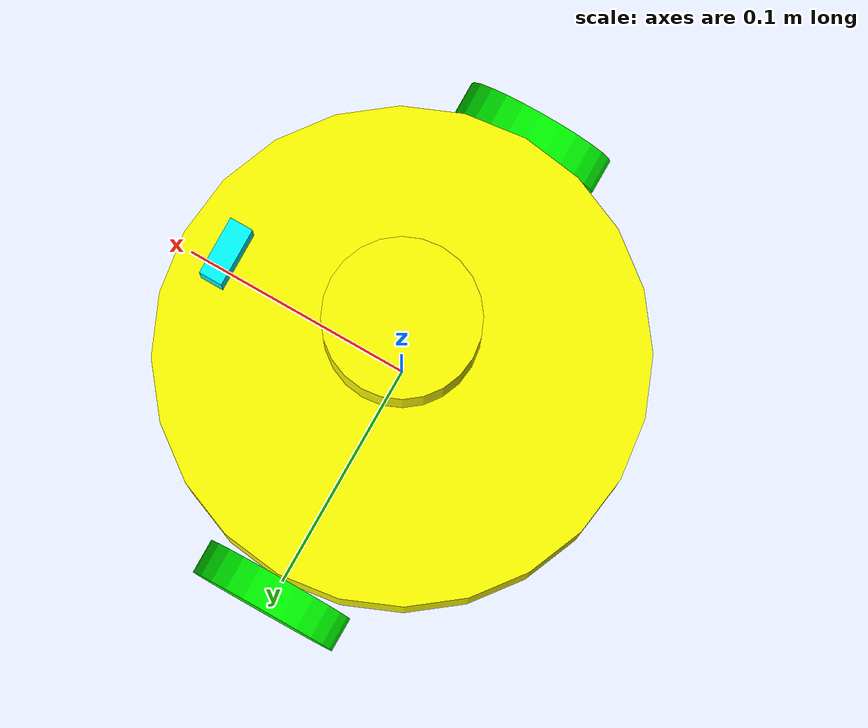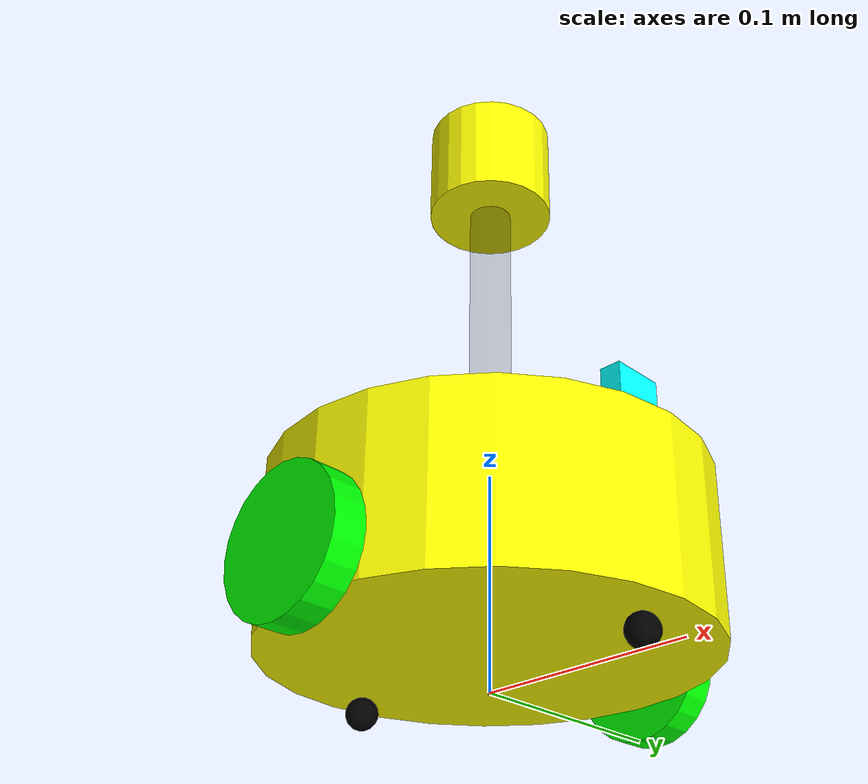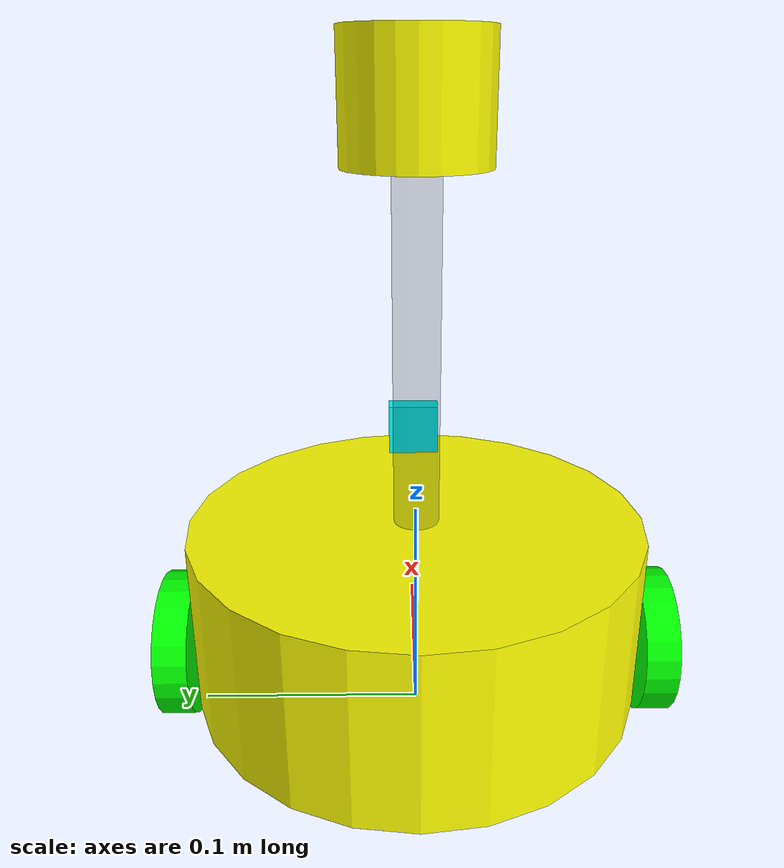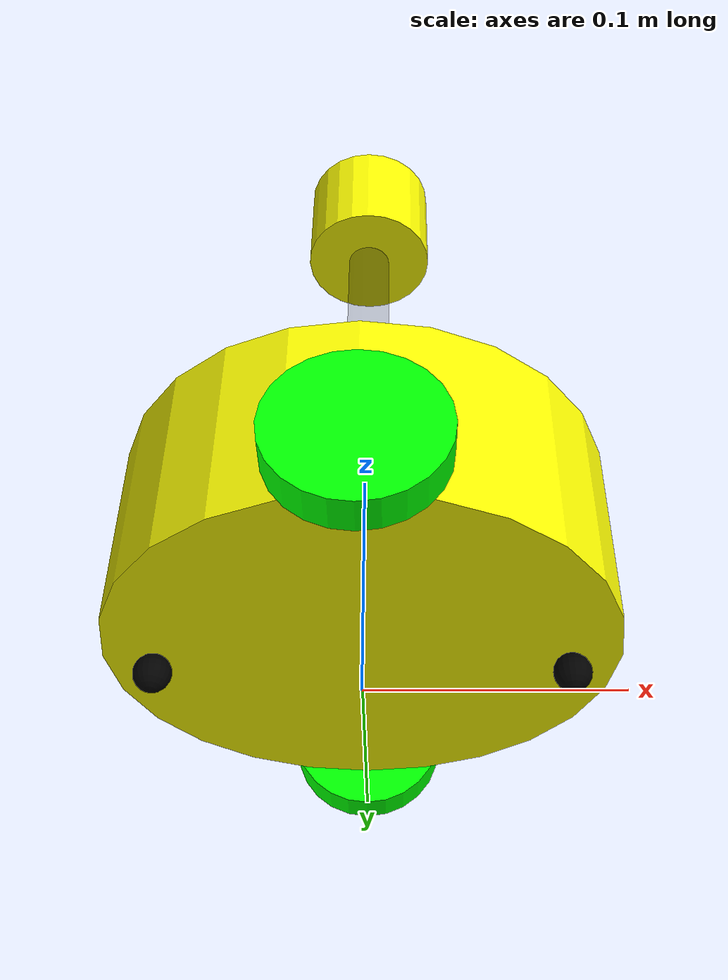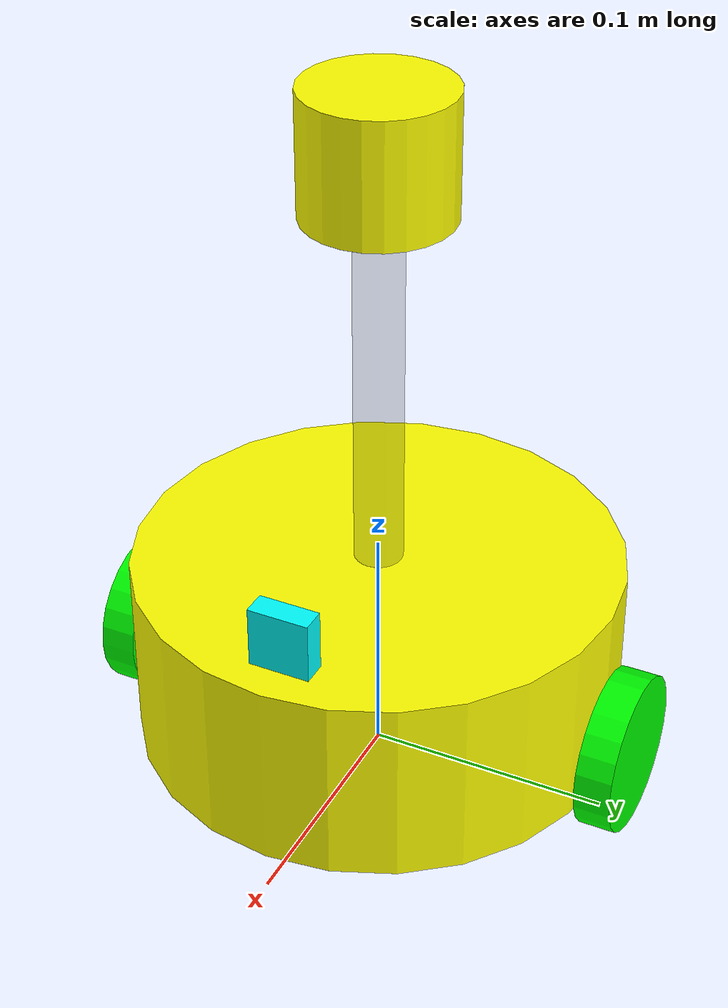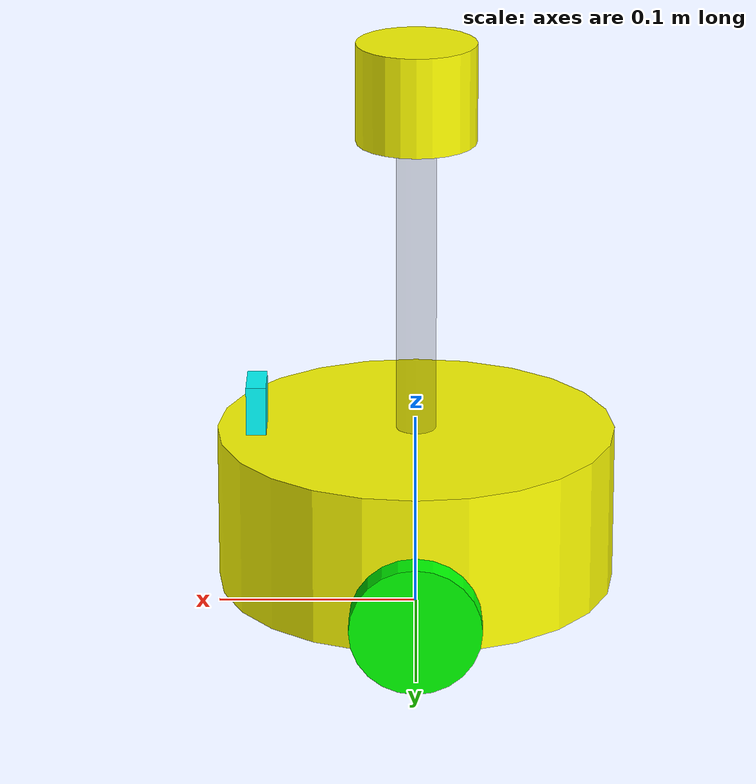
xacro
<!-- 组合小车底盘与摄像头与雷达 -->
<robot name="my_whole_car" xmlns:xacro="http://wiki.ros.org/xacro">
    <xacro:include filename="demo01_car.urdf.xacro" />
    <xacro:include filename="demo02_camera.urdf.xacro" />
    <xacro:include filename="demo03_radar.urdf.xacro" />

</robot>

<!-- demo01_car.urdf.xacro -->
<robot name="mycar" xmlns:xacro="http://wiki.ros.org/xacro">
    <!-- 设置 base_footprint  -->
    <xacro:property name="footprint_radius" value="0.001" />
    <link name="base_footprint">
        <visual>
            <geometry>
                <sphere radius="${footprint_radius}" />
            </geometry>
        </visual>
    </link>

    <!-- 添加底盘 -->
    <xacro:property name="base_radius" value="0.1" />
    <xacro:property name="base_length" value="0.08" />
    <xacro:property name="lidi" value="0.015" />
    <xacro:property name="base_joint_z" value="${base_length / 2 + lidi}" />
    <link name="base_link">
        <visual>
            <geometry>
                <cylinder radius="${base_radius}" length="${base_length}" />
            </geometry>
            <origin xyz="0 0 0" rpy="0 0 0" />
            <material name="yellow">
                <color rgba="1.0 1.0 0.0 1" />
            </material>
        </visual>
    </link>
    <!-- 底盘与原点连接的关节 -->
    <joint name="base_link2base_footprint" type="fixed">
        <parent link="base_footprint" />
        <child link="base_link" />
        <origin xyz="0 0 ${base_joint_z}" />
    </joint>

    <!-- 添加驱动轮 -->
    <xacro:property name="wheel_radius" value="0.0325" /><!-- 半径 -->
    <xacro:property name="wheel_length" value="0.015" /><!-- 宽度 -->
    <xacro:property name="PI" value="3.1415926"/>
    <xacro:property name="wheel_base_z" value="${-(base_length/2+lidi-wheel_radius)}"/>
    <xacro:macro name="add_wheels" params="wheel_name wheel_flag">
        <link name="${wheel_name}">
            <visual>
                <geometry>
                    <cylinder radius="${wheel_radius}" length="${wheel_length}" />
                </geometry>
                <origin xyz="0 0 0" rpy="${PI/2} 0 0" />
                <material name="green">
                    <color rgba="0 1.0 0 1.0" />
                </material>
            </visual>
        </link>
        <joint name="${wheel_name}2base_link" type="continuous">
            <parent link="base_link" />
            <child link="${wheel_name}" />
            <origin xyz="0 ${wheel_flag * 0.1075} ${wheel_base_z}" />
            <axis xyz="0 1 0" />
        </joint>
    </xacro:macro>
    <xacro:add_wheels wheel_name="left_wheel"  wheel_flag="1" />
    <xacro:add_wheels wheel_name="right_wheel" wheel_flag="-1" />

    <!-- 添加万向轮(支撑轮) -->
    <xacro:property name="swheel_radius" value="0.0075" />
    <xacro:property name="swheel_base_z" value="${-(base_length/2+lidi-swheel_radius)}"/>
    <xacro:macro name="sadd_sheels" params="swheel_name swheel_flag">
        <link name="${swheel_name}">
        <visual>
            <geometry>
                <sphere radius="${swheel_radius}" />
            </geometry>
            <origin xyz="0 0 0" rpy="0 0 0" />
            <material name="black">
                <color rgba="0.0 0.0 0.0 1.0" />
            </material>
        </visual>
        </link>
        <joint name="${swheel_name}2base_link" type="continuous">
            <parent link="base_link" />
            <child link="${swheel_name}" />
            <origin xyz="${swheel_flag*0.08} 0 ${swheel_base_z}" />
            <axis xyz="1 1 1" />
        </joint>
    </xacro:macro>
    <xacro:sadd_sheels swheel_name="front_wheel"  swheel_flag="1" />
    <xacro:sadd_sheels swheel_name="back_wheel"  swheel_flag="-1" />

</robot>

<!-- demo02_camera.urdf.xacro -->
<!-- 摄像头相关的 xacro 文件 -->
<robot name="my_camera" xmlns:xacro="http://wiki.ros.org/xacro">
    <!-- 摄像头属性 -->
    <xacro:property name="camera_length" value="0.01" /> <!-- 摄像头长度(x) -->
    <xacro:property name="camera_width" value="0.025" /> <!-- 摄像头宽度(y) -->
    <xacro:property name="camera_height" value="0.025" /> <!-- 摄像头高度(z) -->
    <xacro:property name="camera_x" value="0.08" /> <!-- 摄像头安装的x坐标 -->
    <xacro:property name="camera_y" value="0.0" /> <!-- 摄像头安装的y坐标 -->
    <xacro:property name="camera_z" value="${base_length / 2 + camera_height / 2}" /> <!-- 摄像头安装的z坐标:底盘高度 / 2 + 摄像头高度 / 2  -->

    <!-- 摄像头关节以及link -->
    <link name="camera">
        <visual>
            <geometry>
                <box size="${camera_length} ${camera_width} ${camera_height}" />
            </geometry>
            <origin xyz="0.0 0.0 0.0" rpy="0.0 0.0 0.0" />
            <material name="blue">
                <color rgba="0 1.0 1.0 1.0" />
            </material>
        </visual>
    </link>

    <joint name="camera2base_link" type="fixed">
        <parent link="base_link" />
        <child link="camera" />
        <origin xyz="${camera_x} ${camera_y} ${camera_z}" />
    </joint>
</robot>

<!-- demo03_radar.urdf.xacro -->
<!--小车底盘添加雷达-->
<robot name="my_laser" xmlns:xacro="http://wiki.ros.org/xacro">
    <!-- 雷达支架 -->
    <xacro:property name="support_length" value="0.15" /> <!-- 支架长度 -->
    <xacro:property name="support_radius" value="0.01" /> <!-- 支架半径 -->
    <xacro:property name="support_x" value="0.0" /> <!-- 支架安装的x坐标 -->
    <xacro:property name="support_y" value="0.0" /> <!-- 支架安装的y坐标 -->
    <xacro:property name="support_z" value="${base_length / 2 + support_length / 2}" /> <!-- 支架安装的z坐标:底盘高度 / 2 + 支架高度 / 2  -->

    <link name="support">
        <visual>
            <geometry>
                <cylinder radius="${support_radius}" length="${support_length}" />
            </geometry>
            <origin xyz="0.0 0.0 0.0" rpy="0.0 0.0 0.0" />
            <material name="black">
                <color rgba="0 0 0 0.1" />
            </material>
        </visual>
    </link>
    <joint name="support2base_link" type="fixed">
        <parent link="base_link" />
        <child link="support" />
        <origin xyz="${support_x} ${support_y} ${support_z}" />
    </joint>

        <!-- 雷达属性 -->
    <xacro:property name="laser_length" value="0.05" /> <!-- 雷达长度 -->
    <xacro:property name="laser_radius" value="0.03" /> <!-- 雷达半径 -->
    <xacro:property name="laser_x" value="0.0" /> <!-- 雷达安装的x坐标 -->
    <xacro:property name="laser_y" value="0.0" /> <!-- 雷达安装的y坐标 -->
    <xacro:property name="laser_z" value="${support_length / 2 + laser_length / 2}" /> <!-- 雷达安装的z坐标:支架高度 / 2 + 雷达高度 / 2  -->

    <!-- 雷达关节以及link -->
    <link name="laser">
        <visual>
            <geometry>
                <cylinder radius="${laser_radius}" length="${laser_length}" />
            </geometry>
            <origin xyz="0.0 0.0 0.0" rpy="0.0 0.0 0.0" />
            <material name="yellow">
                <color rgba="1.0 1.0 0 1.0" />
            </material>
        </visual>
    </link>

    <joint name="laser2support" type="fixed">
        <parent link="support" />
        <child link="laser" />
        <origin xyz="${laser_x} ${laser_y} ${laser_z}" />
    </joint>
</robot>
